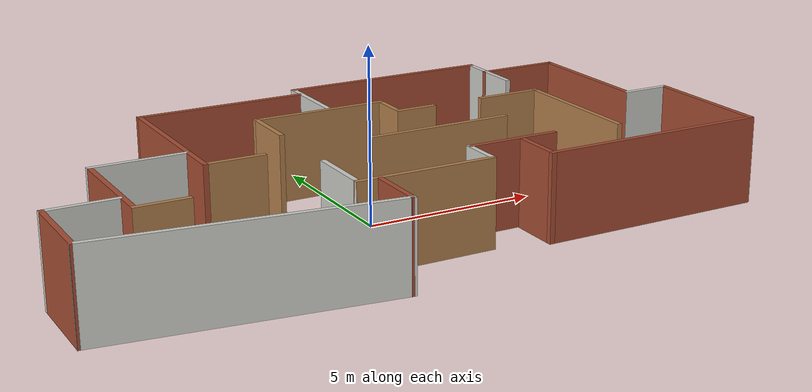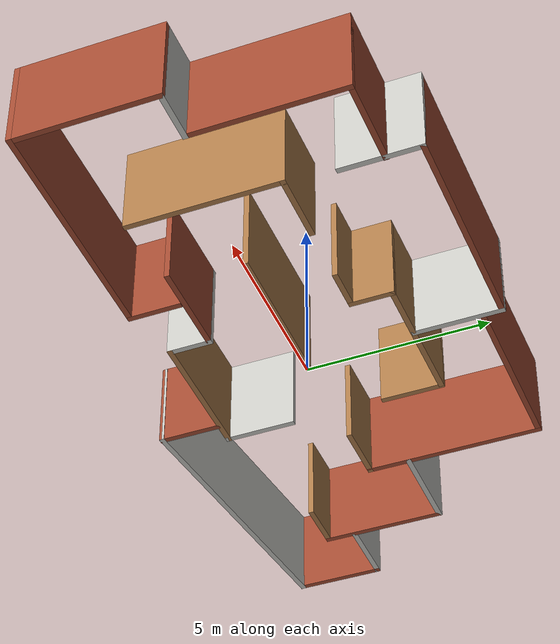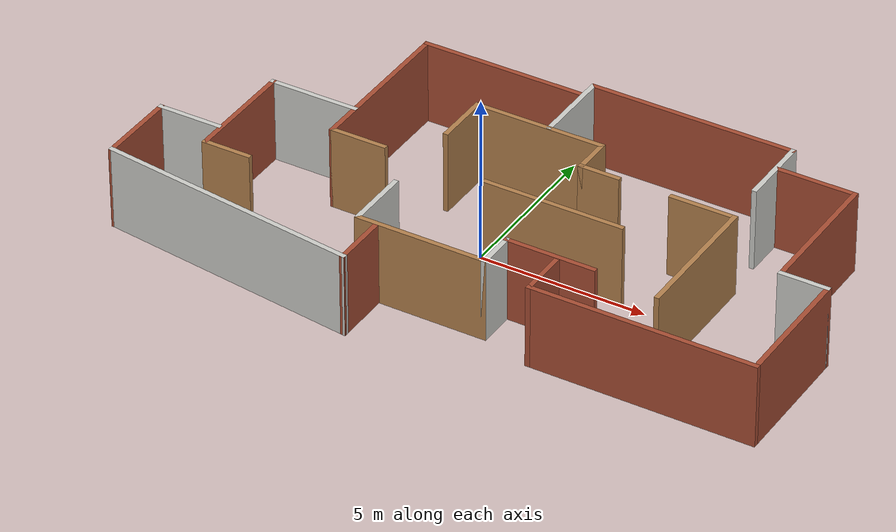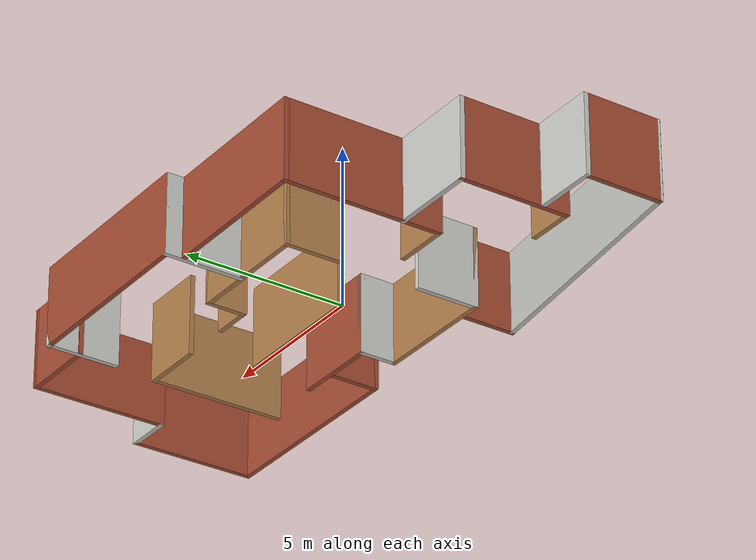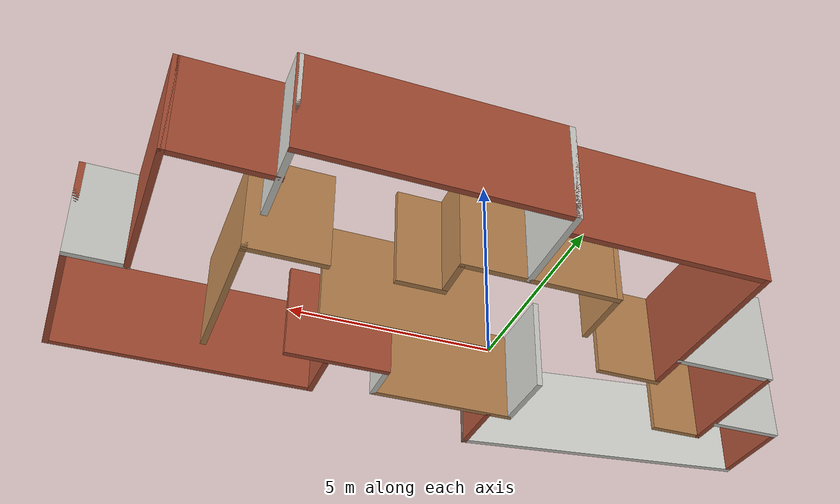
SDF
<?xml version='1.0'?>
<sdf version='1.6'>
  <model name='dat160_w4'>
    <pose frame=''>0.460629 0.346003 0 0 -0 0</pose>
    <link name='Wall_11'>
      <collision name='Wall_11_Collision'>
        <geometry>
          <box>
            <size>4.25 0.15 2.5</size>
          </box>
        </geometry>
        <pose frame=''>0 0 1.25 0 -0 0</pose>
      </collision>
      <visual name='Wall_11_Visual'>
        <pose frame=''>0 0 1.25 0 -0 0</pose>
        <geometry>
          <box>
            <size>4.25 0.15 2.5</size>
          </box>
        </geometry>
        <material>
          <script>
            <uri>file://media/materials/scripts/gazebo.material</uri>
            <name>Gazebo/Wood</name>
          </script>
          <ambient>1 1 1 1</ambient>
        </material>
        <meta>
          <layer>0</layer>
        </meta>
      </visual>
      <pose frame=''>1.71796 -0.294996 0 0 -0 0</pose>
    </link>
    <link name='Wall_144'>
      <collision name='Wall_144_Collision'>
        <geometry>
          <box>
            <size>4.25 0.15 2.5</size>
          </box>
        </geometry>
        <pose frame=''>0 0 1.25 0 -0 0</pose>
      </collision>
      <visual name='Wall_144_Visual'>
        <pose frame=''>0 0 1.25 0 -0 0</pose>
        <geometry>
          <box>
            <size>4.25 0.15 2.5</size>
          </box>
        </geometry>
        <material>
          <script>
            <uri>file://media/materials/scripts/gazebo.material</uri>
            <name>Gazebo/Wood</name>
          </script>
          <ambient>1 1 1 1</ambient>
        </material>
        <meta>
          <layer>0</layer>
        </meta>
      </visual>
      <pose frame=''>6.07374 -0.439174 0 0 -0 -1.5708</pose>
    </link>
    <link name='Wall_146'>
      <collision name='Wall_146_Collision'>
        <geometry>
          <box>
            <size>2.75 0.15 2.5</size>
          </box>
        </geometry>
        <pose frame=''>0 0 1.25 0 -0 0</pose>
      </collision>
      <visual name='Wall_146_Visual'>
        <pose frame=''>0 0 1.25 0 -0 0</pose>
        <geometry>
          <box>
            <size>2.75 0.15 2.5</size>
          </box>
        </geometry>
        <material>
          <script>
            <uri>file://media/materials/scripts/gazebo.material</uri>
            <name>Gazebo/Bricks</name>
          </script>
          <ambient>1 1 1 1</ambient>
        </material>
        <meta>
          <layer>0</layer>
        </meta>
      </visual>
      <pose frame=''>2.77374 -2.28917 0 0 -0 0</pose>
    </link>
    <link name='Wall_148'>
      <collision name='Wall_148_Collision'>
        <geometry>
          <box>
            <size>1.25 0.15 2.5</size>
          </box>
        </geometry>
        <pose frame=''>0 0 1.25 0 -0 0</pose>
      </collision>
      <visual name='Wall_148_Visual'>
        <pose frame=''>0 0 1.25 0 -0 0</pose>
        <geometry>
          <box>
            <size>1.25 0.15 2.5</size>
          </box>
        </geometry>
        <material>
          <script>
            <uri>file://media/materials/scripts/gazebo.material</uri>
            <name>Gazebo/Wood</name>
          </script>
          <ambient>1 1 1 1</ambient>
        </material>
        <meta>
          <layer>0</layer>
        </meta>
      </visual>
      <pose frame=''>2.02374 1.61083 0 0 -0 0</pose>
    </link>
    <link name='Wall_150'>
      <collision name='Wall_150_Collision'>
        <geometry>
          <box>
            <size>2 0.15 2.5</size>
          </box>
        </geometry>
        <pose frame=''>0 0 1.25 0 -0 0</pose>
      </collision>
      <visual name='Wall_150_Visual'>
        <pose frame=''>0 0 1.25 0 -0 0</pose>
        <geometry>
          <box>
            <size>2 0.15 2.5</size>
          </box>
        </geometry>
        <material>
          <script>
            <uri>file://media/materials/scripts/gazebo.material</uri>
            <name>Gazebo/Wood</name>
          </script>
          <ambient>1 1 1 1</ambient>
        </material>
        <meta>
          <layer>0</layer>
        </meta>
      </visual>
      <pose frame=''>5.14874 1.61083 0 0 -0 3.14159</pose>
    </link>
    <link name='Wall_152'>
      <collision name='Wall_152_Collision'>
        <geometry>
          <box>
            <size>2.5 0.15 2.5</size>
          </box>
        </geometry>
        <pose frame=''>0 0 1.25 0 -0 0</pose>
      </collision>
      <visual name='Wall_152_Visual'>
        <pose frame=''>0 0 1.25 0 -0 0</pose>
        <geometry>
          <box>
            <size>2.5 0.15 2.5</size>
          </box>
        </geometry>
        <material>
          <script>
            <uri>file://media/materials/scripts/gazebo.material</uri>
            <name>Gazebo/CeilingTiled</name>
          </script>
          <ambient>1 1 1 1</ambient>
        </material>
        <meta>
          <layer>0</layer>
        </meta>
      </visual>
      <pose frame=''>-0.145686 3.91154 0 0 -0 1.5708</pose>
    </link>
    <link name='Wall_153'>
      <collision name='Wall_153_Collision'>
        <geometry>
          <box>
            <size>6.25 0.15 2.5</size>
          </box>
        </geometry>
        <pose frame=''>0 0 1.25 0 -0 0</pose>
      </collision>
      <visual name='Wall_153_Visual'>
        <pose frame=''>0 0 1.25 0 -0 0</pose>
        <geometry>
          <box>
            <size>6.25 0.15 2.5</size>
          </box>
        </geometry>
        <material>
          <script>
            <uri>file://media/materials/scripts/gazebo.material</uri>
            <name>Gazebo/Bricks</name>
          </script>
          <ambient>1 1 1 1</ambient>
        </material>
        <meta>
          <layer>0</layer>
        </meta>
      </visual>
      <pose frame=''>2.90431 5.08654 0 0 -0 0</pose>
    </link>
    <link name='Wall_154'>
      <collision name='Wall_154_Collision'>
        <geometry>
          <box>
            <size>2.25 0.15 2.5</size>
          </box>
        </geometry>
        <pose frame=''>0 0 1.25 0 -0 0</pose>
      </collision>
      <visual name='Wall_154_Visual'>
        <pose frame=''>0 0 1.25 0 -0 0</pose>
        <geometry>
          <box>
            <size>2.25 0.15 2.5</size>
          </box>
        </geometry>
        <material>
          <script>
            <uri>file://media/materials/scripts/gazebo.material</uri>
            <name>Gazebo/CeilingTiled</name>
          </script>
          <ambient>1 1 1 1</ambient>
        </material>
        <meta>
          <layer>0</layer>
        </meta>
      </visual>
      <pose frame=''>5.95431 4.03654 0 0 -0 -1.5708</pose>
    </link>
    <link name='Wall_156'>
      <collision name='Wall_156_Collision'>
        <geometry>
          <box>
            <size>2.5 0.15 2.5</size>
          </box>
        </geometry>
        <pose frame=''>0 0 1.25 0 -0 0</pose>
      </collision>
      <visual name='Wall_156_Visual'>
        <pose frame=''>0 0 1.25 0 -0 0</pose>
        <geometry>
          <box>
            <size>2.5 0.15 2.5</size>
          </box>
        </geometry>
        <material>
          <script>
            <uri>file://media/materials/scripts/gazebo.material</uri>
            <name>Gazebo/Bricks</name>
          </script>
          <ambient>1 1 1 1</ambient>
        </material>
        <meta>
          <layer>0</layer>
        </meta>
      </visual>
      <pose frame=''>7.11266 4.14751 0 0 -0 0</pose>
    </link>
    <link name='Wall_157'>
      <collision name='Wall_157_Collision'>
        <geometry>
          <box>
            <size>4.25 0.15 2.5</size>
          </box>
        </geometry>
        <pose frame=''>0 0 1.25 0 -0 0</pose>
      </collision>
      <visual name='Wall_157_Visual'>
        <pose frame=''>0 0 1.25 0 -0 0</pose>
        <geometry>
          <box>
            <size>4.25 0.15 2.5</size>
          </box>
        </geometry>
        <material>
          <script>
            <uri>file://media/materials/scripts/gazebo.material</uri>
            <name>Gazebo/Bricks</name>
          </script>
          <ambient>1 1 1 1</ambient>
        </material>
        <meta>
          <layer>0</layer>
        </meta>
      </visual>
      <pose frame=''>8.28766 2.09751 0 0 -0 -1.5708</pose>
    </link>
    <link name='Wall_158'>
      <collision name='Wall_158_Collision'>
        <geometry>
          <box>
            <size>1.5 0.15 2.5</size>
          </box>
        </geometry>
        <pose frame=''>0 0 1.25 0 -0 0</pose>
      </collision>
      <visual name='Wall_158_Visual'>
        <pose frame=''>0 0 1.25 0 -0 0</pose>
        <geometry>
          <box>
            <size>1.5 0.15 2.5</size>
          </box>
        </geometry>
        <material>
          <script>
            <uri>file://media/materials/scripts/gazebo.material</uri>
            <name>Gazebo/CeilingTiled</name>
          </script>
          <ambient>1 1 1 1</ambient>
        </material>
        <meta>
          <layer>0</layer>
        </meta>
      </visual>
      <pose frame=''>8.96266 0.047509 0 0 -0 0</pose>
    </link>
    <link name='Wall_159'>
      <collision name='Wall_159_Collision'>
        <geometry>
          <box>
            <size>4 0.15 2.5</size>
          </box>
        </geometry>
        <pose frame=''>0 0 1.25 0 -0 0</pose>
      </collision>
      <visual name='Wall_159_Visual'>
        <pose frame=''>0 0 1.25 0 -0 0</pose>
        <geometry>
          <box>
            <size>4 0.15 2.5</size>
          </box>
        </geometry>
        <material>
          <script>
            <uri>file://media/materials/scripts/gazebo.material</uri>
            <name>Gazebo/Bricks</name>
          </script>
          <ambient>1 1 1 1</ambient>
        </material>
        <meta>
          <layer>0</layer>
        </meta>
      </visual>
      <pose frame=''>9.63766 -1.87749 0 0 -0 -1.5708</pose>
    </link>
    <link name='Wall_160'>
      <collision name='Wall_160_Collision'>
        <geometry>
          <box>
            <size>6.75 0.15 2.5</size>
          </box>
        </geometry>
        <pose frame=''>0 0 1.25 0 -0 0</pose>
      </collision>
      <visual name='Wall_160_Visual'>
        <pose frame=''>0 0 1.25 0 -0 0</pose>
        <geometry>
          <box>
            <size>6.75 0.15 2.5</size>
          </box>
        </geometry>
        <material>
          <script>
            <uri>file://media/materials/scripts/gazebo.material</uri>
            <name>Gazebo/Bricks</name>
          </script>
          <ambient>1 1 1 1</ambient>
        </material>
        <meta>
          <layer>0</layer>
        </meta>
      </visual>
      <pose frame=''>6.33766 -3.80249 0 0 -0 3.14159</pose>
    </link>
    <link name='Wall_161'>
      <collision name='Wall_161_Collision'>
        <geometry>
          <box>
            <size>1.5 0.15 2.5</size>
          </box>
        </geometry>
        <pose frame=''>0 0 1.25 0 -0 0</pose>
      </collision>
      <visual name='Wall_161_Visual'>
        <pose frame=''>0 0 1.25 0 -0 0</pose>
        <geometry>
          <box>
            <size>1.5 0.15 2.5</size>
          </box>
        </geometry>
        <material>
          <script>
            <uri>file://media/materials/scripts/gazebo.material</uri>
            <name>Gazebo/Bricks</name>
          </script>
          <ambient>1 1 1 1</ambient>
        </material>
        <meta>
          <layer>0</layer>
        </meta>
      </visual>
      <pose frame=''>3.03766 -3.12749 0 0 -0 1.5708</pose>
    </link>
    <link name='Wall_163'>
      <collision name='Wall_163_Collision'>
        <geometry>
          <box>
            <size>1.75 0.15 2.5</size>
          </box>
        </geometry>
        <pose frame=''>0 0 1.25 0 -0 0</pose>
      </collision>
      <visual name='Wall_163_Visual'>
        <pose frame=''>0 0 1.25 0 -0 0</pose>
        <geometry>
          <box>
            <size>1.75 0.15 2.5</size>
          </box>
        </geometry>
        <material>
          <script>
            <uri>file://media/materials/scripts/gazebo.material</uri>
            <name>Gazebo/Wood</name>
          </script>
          <ambient>1 1 1 1</ambient>
        </material>
        <meta>
          <layer>0</layer>
        </meta>
      </visual>
      <pose frame=''>-2.37626 1.91083 0 0 -0 -1.5708</pose>
    </link>
    <link name='Wall_167'>
      <collision name='Wall_167_Collision'>
        <geometry>
          <box>
            <size>2 0.15 2.5</size>
          </box>
        </geometry>
        <pose frame=''>0 0 1.25 0 -0 0</pose>
      </collision>
      <visual name='Wall_167_Visual'>
        <pose frame=''>0 0 1.25 0 -0 0</pose>
        <geometry>
          <box>
            <size>2 0.15 2.5</size>
          </box>
        </geometry>
        <material>
          <script>
            <uri>file://media/materials/scripts/gazebo.material</uri>
            <name>Gazebo/CeilingTiled</name>
          </script>
          <ambient>1 1 1 1</ambient>
        </material>
        <meta>
          <layer>0</layer>
        </meta>
      </visual>
      <pose frame=''>-2.37626 -2.46417 0 0 -0 -1.5708</pose>
    </link>
    <link name='Wall_169'>
      <collision name='Wall_169_Collision'>
        <geometry>
          <box>
            <size>5 0.15 2.5</size>
          </box>
        </geometry>
        <pose frame=''>0 0 1.25 0 -0 0</pose>
      </collision>
      <visual name='Wall_169_Visual'>
        <pose frame=''>0 0 1.25 0 -0 0</pose>
        <geometry>
          <box>
            <size>5 0.15 2.5</size>
          </box>
        </geometry>
        <material>
          <script>
            <uri>file://media/materials/scripts/gazebo.material</uri>
            <name>Gazebo/Bricks</name>
          </script>
          <ambient>1 1 1 1</ambient>
        </material>
        <meta>
          <layer>0</layer>
        </meta>
      </visual>
      <pose frame=''>-2.66321 4.56386 0 0 -0 3.14159</pose>
    </link>
    <link name='Wall_170'>
      <collision name='Wall_170_Collision'>
        <geometry>
          <box>
            <size>5 0.15 2.5</size>
          </box>
        </geometry>
        <pose frame=''>0 0 1.25 0 -0 0</pose>
      </collision>
      <visual name='Wall_170_Visual'>
        <pose frame=''>0 0 1.25 0 -0 0</pose>
        <geometry>
          <box>
            <size>5 0.15 2.5</size>
          </box>
        </geometry>
        <material>
          <script>
            <uri>file://media/materials/scripts/gazebo.material</uri>
            <name>Gazebo/Bricks</name>
          </script>
          <ambient>1 1 1 1</ambient>
        </material>
        <meta>
          <layer>0</layer>
        </meta>
      </visual>
      <pose frame=''>-5.08821 2.13886 0 0 -0 -1.5708</pose>
    </link>
    <link name='Wall_171'>
      <collision name='Wall_171_Collision'>
        <geometry>
          <box>
            <size>1.75 0.15 2.5</size>
          </box>
        </geometry>
        <pose frame=''>0 0 1.25 0 -0 0</pose>
      </collision>
      <visual name='Wall_171_Visual'>
        <pose frame=''>0 0 1.25 0 -0 0</pose>
        <geometry>
          <box>
            <size>1.75 0.15 2.5</size>
          </box>
        </geometry>
        <material>
          <script>
            <uri>file://media/materials/scripts/gazebo.material</uri>
            <name>Gazebo/Wood</name>
          </script>
          <ambient>1 1 1 1</ambient>
        </material>
        <meta>
          <layer>0</layer>
        </meta>
      </visual>
      <pose frame=''>-4.28821 -0.28614 0 0 -0 0</pose>
    </link>
    <link name='Wall_173'>
      <collision name='Wall_173_Collision'>
        <geometry>
          <box>
            <size>2.75 0.15 2.5</size>
          </box>
        </geometry>
        <pose frame=''>0 0 1.25 0 -0 0</pose>
      </collision>
      <visual name='Wall_173_Visual'>
        <pose frame=''>0 0 1.25 0 -0 0</pose>
        <geometry>
          <box>
            <size>2.75 0.15 2.5</size>
          </box>
        </geometry>
        <material>
          <script>
            <uri>file://media/materials/scripts/gazebo.material</uri>
            <name>Gazebo/CeilingTiled</name>
          </script>
          <ambient>1 1 1 1</ambient>
        </material>
        <meta>
          <layer>0</layer>
        </meta>
      </visual>
      <pose frame=''>-6.39564 0.839832 0 0 -0 3.14159</pose>
    </link>
    <link name='Wall_174'>
      <collision name='Wall_174_Collision'>
        <geometry>
          <box>
            <size>3.5 0.15 2.5</size>
          </box>
        </geometry>
        <pose frame=''>0 0 1.25 0 -0 0</pose>
      </collision>
      <visual name='Wall_174_Visual'>
        <pose frame=''>0 0 1.25 0 -0 0</pose>
        <geometry>
          <box>
            <size>3.5 0.15 2.5</size>
          </box>
        </geometry>
        <material>
          <script>
            <uri>file://media/materials/scripts/gazebo.material</uri>
            <name>Gazebo/Bricks</name>
          </script>
          <ambient>1 1 1 1</ambient>
        </material>
        <meta>
          <layer>0</layer>
        </meta>
      </visual>
      <pose frame=''>-7.69564 -0.835168 0 0 -0 -1.5708</pose>
    </link>
    <link name='Wall_175'>
      <collision name='Wall_175_Collision'>
        <geometry>
          <box>
            <size>1.5 0.15 2.5</size>
          </box>
        </geometry>
        <pose frame=''>0 0 1.25 0 -0 0</pose>
      </collision>
      <visual name='Wall_175_Visual'>
        <pose frame=''>0 0 1.25 0 -0 0</pose>
        <geometry>
          <box>
            <size>1.5 0.15 2.5</size>
          </box>
        </geometry>
        <material>
          <script>
            <uri>file://media/materials/scripts/gazebo.material</uri>
            <name>Gazebo/Wood</name>
          </script>
          <ambient>1 1 1 1</ambient>
        </material>
        <meta>
          <layer>0</layer>
        </meta>
      </visual>
      <pose frame=''>-7.02064 -2.51017 0 0 -0 0</pose>
    </link>
    <link name='Wall_177'>
      <collision name='Wall_177_Collision'>
        <geometry>
          <box>
            <size>2 0.15 2.5</size>
          </box>
        </geometry>
        <pose frame=''>0 0 1.25 0 -0 0</pose>
      </collision>
      <visual name='Wall_177_Visual'>
        <pose frame=''>0 0 1.25 0 -0 0</pose>
        <geometry>
          <box>
            <size>2 0.15 2.5</size>
          </box>
        </geometry>
        <material>
          <script>
            <uri>file://media/materials/scripts/gazebo.material</uri>
            <name>Gazebo/CeilingTiled</name>
          </script>
          <ambient>1 1 1 1</ambient>
        </material>
        <meta>
          <layer>0</layer>
        </meta>
      </visual>
      <pose frame=''>-8.70379 -1.72767 0 0 -0 3.14159</pose>
    </link>
    <link name='Wall_178'>
      <collision name='Wall_178_Collision'>
        <geometry>
          <box>
            <size>2.5 0.15 2.5</size>
          </box>
        </geometry>
        <pose frame=''>0 0 1.25 0 -0 0</pose>
      </collision>
      <visual name='Wall_178_Visual'>
        <pose frame=''>0 0 1.25 0 -0 0</pose>
        <geometry>
          <box>
            <size>2.5 0.15 2.5</size>
          </box>
        </geometry>
        <material>
          <script>
            <uri>file://media/materials/scripts/gazebo.material</uri>
            <name>Gazebo/Bricks</name>
          </script>
          <ambient>1 1 1 1</ambient>
        </material>
        <meta>
          <layer>0</layer>
        </meta>
      </visual>
      <pose frame=''>-9.62879 -2.90267 0 0 -0 -1.5708</pose>
    </link>
    <link name='Wall_179'>
      <collision name='Wall_179_Collision'>
        <geometry>
          <box>
            <size>8.06344 0.15 2.5</size>
          </box>
        </geometry>
        <pose frame=''>0 0 1.25 0 -0 0</pose>
      </collision>
      <visual name='Wall_179_Visual'>
        <pose frame=''>0 0 1.25 0 -0 0</pose>
        <geometry>
          <box>
            <size>8.06344 0.15 2.5</size>
          </box>
        </geometry>
        <material>
          <script>
            <uri>file://media/materials/scripts/gazebo.material</uri>
            <name>Gazebo/CeilingTiled</name>
          </script>
          <ambient>1 1 1 1</ambient>
        </material>
        <meta>
          <layer>0</layer>
        </meta>
      </visual>
      <pose frame=''>-5.70379 -4.57767 0 0 -0 -0.126706</pose>
    </link>
    <link name='Wall_180'>
      <collision name='Wall_180_Collision'>
        <geometry>
          <box>
            <size>1.75 0.15 2.5</size>
          </box>
        </geometry>
        <pose frame=''>0 0 1.25 0 -0 0</pose>
      </collision>
      <visual name='Wall_180_Visual'>
        <pose frame=''>0 0 1.25 0 -0 0</pose>
        <geometry>
          <box>
            <size>1.75 0.15 2.5</size>
          </box>
        </geometry>
        <material>
          <script>
            <uri>file://media/materials/scripts/gazebo.material</uri>
            <name>Gazebo/Bricks</name>
          </script>
          <ambient>1 1 1 1</ambient>
        </material>
        <meta>
          <layer>0</layer>
        </meta>
      </visual>
      <pose frame=''>-1.77879 -4.27767 0 0 -0 1.5708</pose>
    </link>
    <link name='Wall_3'>
      <collision name='Wall_3_Collision'>
        <geometry>
          <box>
            <size>4 0.15 2.5</size>
          </box>
        </geometry>
        <pose frame=''>0 0 1.25 0 -0 0</pose>
      </collision>
      <visual name='Wall_3_Visual'>
        <pose frame=''>0 0 1.25 0 -0 0</pose>
        <geometry>
          <box>
            <size>4 0.15 2.5</size>
          </box>
        </geometry>
        <material>
          <script>
            <uri>file://media/materials/scripts/gazebo.material</uri>
            <name>Gazebo/Wood</name>
          </script>
          <ambient>1 1 1 1</ambient>
        </material>
        <meta>
          <layer>0</layer>
        </meta>
      </visual>
      <pose frame=''>-0.451262 2.71083 0 0 -0 0</pose>
    </link>
    <link name='Wall_6'>
      <collision name='Wall_6_Collision'>
        <geometry>
          <box>
            <size>4 0.15 2.5</size>
          </box>
        </geometry>
        <pose frame=''>0 0 1.25 0 -0 0</pose>
      </collision>
      <visual name='Wall_6_Visual'>
        <pose frame=''>0 0 1.25 0 -0 0</pose>
        <geometry>
          <box>
            <size>4 0.15 2.5</size>
          </box>
        </geometry>
        <material>
          <script>
            <uri>file://media/materials/scripts/gazebo.material</uri>
            <name>Gazebo/Wood</name>
          </script>
          <ambient>1 1 1 1</ambient>
        </material>
        <meta>
          <layer>0</layer>
        </meta>
      </visual>
      <pose frame=''>-0.451262 -3.38917 0 0 -0 0</pose>
    </link>
    <link name='Wall_7'>
      <collision name='Wall_7_Collision'>
        <geometry>
          <box>
            <size>1.25 0.15 2.5</size>
          </box>
        </geometry>
        <pose frame=''>0 0 1.25 0 -0 0</pose>
      </collision>
      <visual name='Wall_7_Visual'>
        <pose frame=''>0 0 1.25 0 -0 0</pose>
        <geometry>
          <box>
            <size>1.25 0.15 2.5</size>
          </box>
        </geometry>
        <material>
          <script>
            <uri>file://media/materials/scripts/gazebo.material</uri>
            <name>Gazebo/CeilingTiled</name>
          </script>
          <ambient>1 1 1 1</ambient>
        </material>
        <meta>
          <layer>0</layer>
        </meta>
      </visual>
      <pose frame=''>1.47374 -2.83917 0 0 -0 1.5708</pose>
    </link>
    <link name='Wall_9'>
      <collision name='Wall_9_Collision'>
        <geometry>
          <box>
            <size>1.25 0.15 2.5</size>
          </box>
        </geometry>
        <pose frame=''>0 0 1.25 0 -0 0</pose>
      </collision>
      <visual name='Wall_9_Visual'>
        <pose frame=''>0 0 1.25 0 -0 0</pose>
        <geometry>
          <box>
            <size>1.25 0.15 2.5</size>
          </box>
        </geometry>
        <material>
          <script>
            <uri>file://media/materials/scripts/gazebo.material</uri>
            <name>Gazebo/Wood</name>
          </script>
          <ambient>1 1 1 1</ambient>
        </material>
        <meta>
          <layer>0</layer>
        </meta>
      </visual>
      <pose frame=''>1.47374 2.16083 0 0 -0 -1.5708</pose>
    </link>
    <static>1</static>
  </model>
</sdf>
